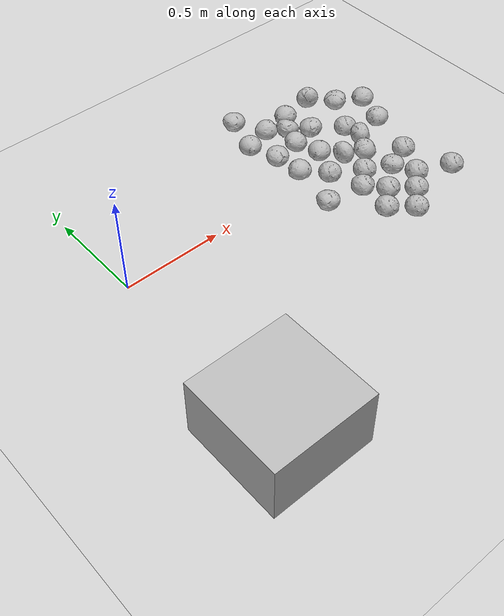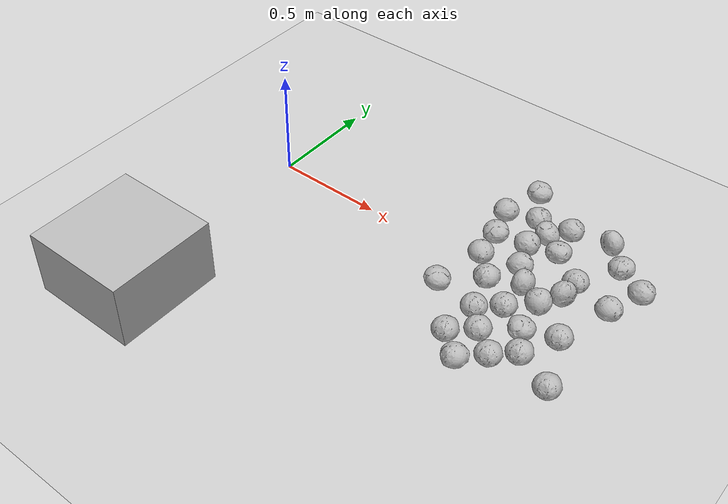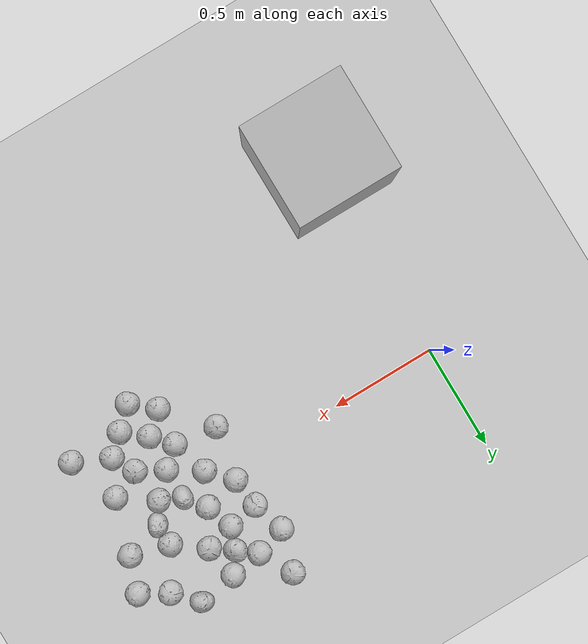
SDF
<sdf version="1.6">
 <world name="default">
  <model name="ground_plane">
   <static>1</static>
   <link name="link">
    <collision name="collision">
     <geometry><plane><normal>0 0 1</normal><size>100 100</size></plane></geometry>
     <surface>
      <contact><collide_bitmask>65535</collide_bitmask></contact>
      <friction><ode><mu>100</mu><mu2>50</mu2></ode></friction>
     </surface>
    </collision>
    <visual name="visual">
     <cast_shadows>0</cast_shadows>
     <geometry><plane><normal>0 0 1</normal><size>100 100</size></plane></geometry>
     <material>
      <script><uri>file://media/materials/scripts/gazebo.material</uri><name>Gazebo/Grey</name></script>
     </material>
    </visual>
   </link>
  </model>
  <light name="sun" type="directional">
   <pose>0 0 10 0 -0 0</pose>
   <diffuse>0.8 0.8 0.8 1</diffuse>
   <specular>0.2 0.2 0.2 1</specular>
   <attenuation>
    <range>1000</range>
    <constant>0.9</constant>
    <linear>0.01</linear>
    <quadratic>0.001</quadratic>
   </attenuation>
   <direction>-0.5 0.1 -0.9</direction>
  </light>
  <model name="mytable">
   <static>1</static>
   <link name="link">
    <inertial>
     <mass>100</mass>
     <inertia><ixx>0.083</ixx><ixy>0</ixy><ixz>0</ixz><iyy>0.083</iyy><iyz>0</iyz><izz>0.083</izz></inertia>
    </inertial>
    <collision name="collision"><geometry><box><size>0.5 0.5 0.4</size></box></geometry></collision>
    <visual name="visual"><geometry><box><size>0.5 0.5 0.4</size></box></geometry></visual>
   </link>
   <pose>0 -1 0.1 0 -0 0</pose>
  </model>
  <gravity>0 0 -9.8</gravity>
  <magnetic_field>6e-06 2.3e-05 -4.2e-05</magnetic_field>
  <atmosphere type="adiabatic"/>
  <physics name="default_physics" default="0" type="ode">
   <max_step_size>0.001</max_step_size>
   <real_time_factor>1</real_time_factor>
   <real_time_update_rate>1000</real_time_update_rate>
  </physics>
  <scene><ambient>0.4 0.4 0.4 1</ambient><background>0.7 0.7 0.7 1</background><shadows>1</shadows></scene>
  <audio><device>default</device></audio>
  <spherical_coordinates>
   <surface_model>EARTH_WGS84</surface_model>
   <latitude_deg>0</latitude_deg>
   <longitude_deg>0</longitude_deg>
   <elevation>0</elevation>
   <heading_deg>0</heading_deg>
  </spherical_coordinates>
  <model name="cabbage_1">
   <link name="link">
    <inertial>
     <mass>1</mass>
     <inertia><ixx>0.001</ixx><ixy>0</ixy><ixz>0</ixz><iyy>0.001</iyy><iyz>0</iyz><izz>0.001</izz></inertia>
    </inertial>
    <collision name="collision">
     <geometry>
      <mesh><scale>0.001 0.001 0.001</scale><uri>model://cabbage/cabbage_single.dae</uri></mesh>
     </geometry>
     <surface>
      <friction><ode><mu>0.8</mu><mu2>0.8</mu2></ode></friction>
      <contact><ode><max_vel>0.05</max_vel><min_depth>0.0001</min_depth></ode></contact>
     </surface>
    </collision>
    <visual name="visual">
     <geometry>
      <mesh><scale>0.001 0.001 0.001</scale><uri>model://cabbage/cabbage_single.dae</uri></mesh>
     </geometry>
     <material><script><uri>model://cabbage/texture.material</uri><name>CabbageTexture</name></script></material>
    </visual>
   </link>
   <pose>1.57456 0.326071 0.048844 -1.61248 -0.168005 0.040837</pose>
  </model>
  <model name="cabbage_2">
   <link name="link">
    <inertial>
     <mass>1</mass>
     <inertia><ixx>0.001</ixx><ixy>0</ixy><ixz>0</ixz><iyy>0.001</iyy><iyz>0</iyz><izz>0.001</izz></inertia>
    </inertial>
    <collision name="collision">
     <geometry>
      <mesh><scale>0.001 0.001 0.001</scale><uri>model://cabbage/cabbage_single.dae</uri></mesh>
     </geometry>
     <surface>
      <friction><ode><mu>0.8</mu><mu2>0.8</mu2></ode></friction>
      <contact><ode><max_vel>0.05</max_vel><min_depth>0.0001</min_depth></ode></contact>
     </surface>
    </collision>
    <visual name="visual">
     <geometry>
      <mesh><scale>0.001 0.001 0.001</scale><uri>model://cabbage/cabbage_single.dae</uri></mesh>
     </geometry>
     <material><script><uri>model://cabbage/texture.material</uri><name>CabbageTexture</name></script></material>
    </visual>
   </link>
   <pose>1.14025 0.381642 0.051425 1.57519 0.009731 -1.18886</pose>
  </model>
  <model name="cabbage_3">
   <link name="link">
    <inertial>
     <mass>1</mass>
     <inertia><ixx>0.001</ixx><ixy>0</ixy><ixz>0</ixz><iyy>0.001</iyy><iyz>0</iyz><izz>0.001</izz></inertia>
    </inertial>
    <collision name="collision">
     <geometry>
      <mesh><scale>0.001 0.001 0.001</scale><uri>model://cabbage/cabbage_single.dae</uri></mesh>
     </geometry>
     <surface>
      <friction><ode><mu>0.8</mu><mu2>0.8</mu2></ode></friction>
      <contact><ode><max_vel>0.05</max_vel><min_depth>0.0001</min_depth></ode></contact>
     </surface>
    </collision>
    <visual name="visual">
     <geometry>
      <mesh><scale>0.001 0.001 0.001</scale><uri>model://cabbage/cabbage_single.dae</uri></mesh>
     </geometry>
     <material><script><uri>model://cabbage/texture.material</uri><name>CabbageTexture</name></script></material>
    </visual>
   </link>
   <pose>1.30641 -0.011556 0.059003 0.12667 0.61895 -1.55094</pose>
  </model>
  <model name="cabbage_4">
   <link name="link">
    <inertial>
     <mass>1</mass>
     <inertia><ixx>0.001</ixx><ixy>0</ixy><ixz>0</ixz><iyy>0.001</iyy><iyz>0</iyz><izz>0.001</izz></inertia>
    </inertial>
    <collision name="collision">
     <geometry>
      <mesh><scale>0.001 0.001 0.001</scale><uri>model://cabbage/cabbage_single.dae</uri></mesh>
     </geometry>
     <surface>
      <friction><ode><mu>0.8</mu><mu2>0.8</mu2></ode></friction>
      <contact><ode><max_vel>0.05</max_vel><min_depth>0.0001</min_depth></ode></contact>
     </surface>
    </collision>
    <visual name="visual">
     <geometry>
      <mesh><scale>0.001 0.001 0.001</scale><uri>model://cabbage/cabbage_single.dae</uri></mesh>
     </geometry>
     <material><script><uri>model://cabbage/texture.material</uri><name>CabbageTexture</name></script></material>
    </visual>
   </link>
   <pose>1.16035 -0.065335 0.051506 1.5765 0.009258 -3.08324</pose>
  </model>
  <model name="cabbage_5">
   <link name="link">
    <inertial>
     <mass>1</mass>
     <inertia><ixx>0.001</ixx><ixy>0</ixy><ixz>0</ixz><iyy>0.001</iyy><iyz>0</iyz><izz>0.001</izz></inertia>
    </inertial>
    <collision name="collision">
     <geometry>
      <mesh><scale>0.001 0.001 0.001</scale><uri>model://cabbage/cabbage_single.dae</uri></mesh>
     </geometry>
     <surface>
      <friction><ode><mu>0.8</mu><mu2>0.8</mu2></ode></friction>
      <contact><ode><max_vel>0.05</max_vel><min_depth>0.0001</min_depth></ode></contact>
     </surface>
    </collision>
    <visual name="visual">
     <geometry>
      <mesh><scale>0.001 0.001 0.001</scale><uri>model://cabbage/cabbage_single.dae</uri></mesh>
     </geometry>
     <material><script><uri>model://cabbage/texture.material</uri><name>CabbageTexture</name></script></material>
    </visual>
   </link>
   <pose>1.70587 0.255784 0.051507 1.57631 0.009067 -0.719772</pose>
  </model>
  <model name="cabbage_6">
   <link name="link">
    <inertial>
     <mass>1</mass>
     <inertia><ixx>0.001</ixx><ixy>0</ixy><ixz>0</ixz><iyy>0.001</iyy><iyz>0</iyz><izz>0.001</izz></inertia>
    </inertial>
    <collision name="collision">
     <geometry>
      <mesh><scale>0.001 0.001 0.001</scale><uri>model://cabbage/cabbage_single.dae</uri></mesh>
     </geometry>
     <surface>
      <friction><ode><mu>0.8</mu><mu2>0.8</mu2></ode></friction>
      <contact><ode><max_vel>0.05</max_vel><min_depth>0.0001</min_depth></ode></contact>
     </surface>
    </collision>
    <visual name="visual">
     <geometry>
      <mesh><scale>0.001 0.001 0.001</scale><uri>model://cabbage/cabbage_single.dae</uri></mesh>
     </geometry>
     <material><script><uri>model://cabbage/texture.material</uri><name>CabbageTexture</name></script></material>
    </visual>
   </link>
   <pose>1.40607 -0.06014 0.056394 1.96578 -0.366572 1.27755</pose>
  </model>
  <model name="cabbage_7">
   <link name="link">
    <inertial>
     <mass>1</mass>
     <inertia><ixx>0.001</ixx><ixy>0</ixy><ixz>0</ixz><iyy>0.001</iyy><iyz>0</iyz><izz>0.001</izz></inertia>
    </inertial>
    <collision name="collision">
     <geometry>
      <mesh><scale>0.001 0.001 0.001</scale><uri>model://cabbage/cabbage_single.dae</uri></mesh>
     </geometry>
     <surface>
      <friction><ode><mu>0.8</mu><mu2>0.8</mu2></ode></friction>
      <contact><ode><max_vel>0.05</max_vel><min_depth>0.0001</min_depth></ode></contact>
     </surface>
    </collision>
    <visual name="visual">
     <geometry>
      <mesh><scale>0.001 0.001 0.001</scale><uri>model://cabbage/cabbage_single.dae</uri></mesh>
     </geometry>
     <material><script><uri>model://cabbage/texture.material</uri><name>CabbageTexture</name></script></material>
    </visual>
   </link>
   <pose>1.05927 0.04365 0.051505 1.57638 0.009409 1.37287</pose>
  </model>
  <model name="cabbage_8">
   <link name="link">
    <inertial>
     <mass>1</mass>
     <inertia><ixx>0.001</ixx><ixy>0</ixy><ixz>0</ixz><iyy>0.001</iyy><iyz>0</iyz><izz>0.001</izz></inertia>
    </inertial>
    <collision name="collision">
     <geometry>
      <mesh><scale>0.001 0.001 0.001</scale><uri>model://cabbage/cabbage_single.dae</uri></mesh>
     </geometry>
     <surface>
      <friction><ode><mu>0.8</mu><mu2>0.8</mu2></ode></friction>
      <contact><ode><max_vel>0.05</max_vel><min_depth>0.0001</min_depth></ode></contact>
     </surface>
    </collision>
    <visual name="visual">
     <geometry>
      <mesh><scale>0.001 0.001 0.001</scale><uri>model://cabbage/cabbage_single.dae</uri></mesh>
     </geometry>
     <material><script><uri>model://cabbage/texture.material</uri><name>CabbageTexture</name></script></material>
    </visual>
   </link>
   <pose>1.23107 0.085201 0.051506 1.57639 0.009341 -0.17715</pose>
  </model>
  <model name="cabbage_9">
   <link name="link">
    <inertial>
     <mass>1</mass>
     <inertia><ixx>0.001</ixx><ixy>0</ixy><ixz>0</ixz><iyy>0.001</iyy><iyz>0</iyz><izz>0.001</izz></inertia>
    </inertial>
    <collision name="collision">
     <geometry>
      <mesh><scale>0.001 0.001 0.001</scale><uri>model://cabbage/cabbage_single.dae</uri></mesh>
     </geometry>
     <surface>
      <friction><ode><mu>0.8</mu><mu2>0.8</mu2></ode></friction>
      <contact><ode><max_vel>0.05</max_vel><min_depth>0.0001</min_depth></ode></contact>
     </surface>
    </collision>
    <visual name="visual">
     <geometry>
      <mesh><scale>0.001 0.001 0.001</scale><uri>model://cabbage/cabbage_single.dae</uri></mesh>
     </geometry>
     <material><script><uri>model://cabbage/texture.material</uri><name>CabbageTexture</name></script></material>
    </visual>
   </link>
   <pose>1.29253 0.406218 0.051507 1.57639 0.00912 -0.69345</pose>
  </model>
  <model name="cabbage_10">
   <link name="link">
    <inertial>
     <mass>1</mass>
     <inertia><ixx>0.001</ixx><ixy>0</ixy><ixz>0</ixz><iyy>0.001</iyy><iyz>0</iyz><izz>0.001</izz></inertia>
    </inertial>
    <collision name="collision">
     <geometry>
      <mesh><scale>0.001 0.001 0.001</scale><uri>model://cabbage/cabbage_single.dae</uri></mesh>
     </geometry>
     <surface>
      <friction><ode><mu>0.8</mu><mu2>0.8</mu2></ode></friction>
      <contact><ode><max_vel>0.05</max_vel><min_depth>0.0001</min_depth></ode></contact>
     </surface>
    </collision>
    <visual name="visual">
     <geometry>
      <mesh><scale>0.001 0.001 0.001</scale><uri>model://cabbage/cabbage_single.dae</uri></mesh>
     </geometry>
     <material><script><uri>model://cabbage/texture.material</uri><name>CabbageTexture</name></script></material>
    </visual>
   </link>
   <pose>1.22203 0.313648 0.051116 -1.6542 -0.577219 -2.54183</pose>
  </model>
  <model name="cabbage_11">
   <link name="link">
    <inertial>
     <mass>1</mass>
     <inertia><ixx>0.001</ixx><ixy>0</ixy><ixz>0</ixz><iyy>0.001</iyy><iyz>0</iyz><izz>0.001</izz></inertia>
    </inertial>
    <collision name="collision">
     <geometry>
      <mesh><scale>0.001 0.001 0.001</scale><uri>model://cabbage/cabbage_single.dae</uri></mesh>
     </geometry>
     <surface>
      <friction><ode><mu>0.8</mu><mu2>0.8</mu2></ode></friction>
      <contact><ode><max_vel>0.05</max_vel><min_depth>0.0001</min_depth></ode></contact>
     </surface>
    </collision>
    <visual name="visual">
     <geometry>
      <mesh><scale>0.001 0.001 0.001</scale><uri>model://cabbage/cabbage_single.dae</uri></mesh>
     </geometry>
     <material><script><uri>model://cabbage/texture.material</uri><name>CabbageTexture</name></script></material>
    </visual>
   </link>
   <pose>1.46461 0.140466 0.052233 1.66635 -0.021573 -2.61976</pose>
  </model>
  <model name="cabbage_12">
   <link name="link">
    <inertial>
     <mass>1</mass>
     <inertia><ixx>0.001</ixx><ixy>0</ixy><ixz>0</ixz><iyy>0.001</iyy><iyz>0</iyz><izz>0.001</izz></inertia>
    </inertial>
    <collision name="collision">
     <geometry>
      <mesh><scale>0.001 0.001 0.001</scale><uri>model://cabbage/cabbage_single.dae</uri></mesh>
     </geometry>
     <surface>
      <friction><ode><mu>0.8</mu><mu2>0.8</mu2></ode></friction>
      <contact><ode><max_vel>0.05</max_vel><min_depth>0.0001</min_depth></ode></contact>
     </surface>
    </collision>
    <visual name="visual">
     <geometry>
      <mesh><scale>0.001 0.001 0.001</scale><uri>model://cabbage/cabbage_single.dae</uri></mesh>
     </geometry>
     <material><script><uri>model://cabbage/texture.material</uri><name>CabbageTexture</name></script></material>
    </visual>
   </link>
   <pose>1.4279 -0.226624 0.048853 -1.66267 -0.171126 -1.74205</pose>
  </model>
  <model name="cabbage_13">
   <link name="link">
    <inertial>
     <mass>1</mass>
     <inertia><ixx>0.001</ixx><ixy>0</ixy><ixz>0</ixz><iyy>0.001</iyy><iyz>0</iyz><izz>0.001</izz></inertia>
    </inertial>
    <collision name="collision">
     <geometry>
      <mesh><scale>0.001 0.001 0.001</scale><uri>model://cabbage/cabbage_single.dae</uri></mesh>
     </geometry>
     <surface>
      <friction><ode><mu>0.8</mu><mu2>0.8</mu2></ode></friction>
      <contact><ode><max_vel>0.05</max_vel><min_depth>0.0001</min_depth></ode></contact>
     </surface>
    </collision>
    <visual name="visual">
     <geometry>
      <mesh><scale>0.001 0.001 0.001</scale><uri>model://cabbage/cabbage_single.dae</uri></mesh>
     </geometry>
     <material><script><uri>model://cabbage/texture.material</uri><name>CabbageTexture</name></script></material>
    </visual>
   </link>
   <pose>1.05228 0.534414 0.048854 -1.66158 -0.104835 -2.29005</pose>
  </model>
  <model name="cabbage_14">
   <link name="link">
    <inertial>
     <mass>1</mass>
     <inertia><ixx>0.001</ixx><ixy>0</ixy><ixz>0</ixz><iyy>0.001</iyy><iyz>0</iyz><izz>0.001</izz></inertia>
    </inertial>
    <collision name="collision">
     <geometry>
      <mesh><scale>0.001 0.001 0.001</scale><uri>model://cabbage/cabbage_single.dae</uri></mesh>
     </geometry>
     <surface>
      <friction><ode><mu>0.8</mu><mu2>0.8</mu2></ode></friction>
      <contact><ode><max_vel>0.05</max_vel><min_depth>0.0001</min_depth></ode></contact>
     </surface>
    </collision>
    <visual name="visual">
     <geometry>
      <mesh><scale>0.001 0.001 0.001</scale><uri>model://cabbage/cabbage_single.dae</uri></mesh>
     </geometry>
     <material><script><uri>model://cabbage/texture.material</uri><name>CabbageTexture</name></script></material>
    </visual>
   </link>
   <pose>1.64453 0.089011 0.051507 1.57648 0.009044 1.93802</pose>
  </model>
  <model name="cabbage_15">
   <link name="link">
    <inertial>
     <mass>1</mass>
     <inertia><ixx>0.001</ixx><ixy>0</ixy><ixz>0</ixz><iyy>0.001</iyy><iyz>0</iyz><izz>0.001</izz></inertia>
    </inertial>
    <collision name="collision">
     <geometry>
      <mesh><scale>0.001 0.001 0.001</scale><uri>model://cabbage/cabbage_single.dae</uri></mesh>
     </geometry>
     <surface>
      <friction><ode><mu>0.8</mu><mu2>0.8</mu2></ode></friction>
      <contact><ode><max_vel>0.05</max_vel><min_depth>0.0001</min_depth></ode></contact>
     </surface>
    </collision>
    <visual name="visual">
     <geometry>
      <mesh><scale>0.001 0.001 0.001</scale><uri>model://cabbage/cabbage_single.dae</uri></mesh>
     </geometry>
     <material><script><uri>model://cabbage/texture.material</uri><name>CabbageTexture</name></script></material>
    </visual>
   </link>
   <pose>0.997145 0.340501 0.051507 1.57634 0.00908 0.291486</pose>
  </model>
  <model name="cabbage_16">
   <link name="link">
    <inertial>
     <mass>1</mass>
     <inertia><ixx>0.001</ixx><ixy>0</ixy><ixz>0</ixz><iyy>0.001</iyy><iyz>0</iyz><izz>0.001</izz></inertia>
    </inertial>
    <collision name="collision">
     <geometry>
      <mesh><scale>0.001 0.001 0.001</scale><uri>model://cabbage/cabbage_single.dae</uri></mesh>
     </geometry>
     <surface>
      <friction><ode><mu>0.8</mu><mu2>0.8</mu2></ode></friction>
      <contact><ode><max_vel>0.05</max_vel><min_depth>0.0001</min_depth></ode></contact>
     </surface>
    </collision>
    <visual name="visual">
     <geometry>
      <mesh><scale>0.001 0.001 0.001</scale><uri>model://cabbage/cabbage_single.dae</uri></mesh>
     </geometry>
     <material><script><uri>model://cabbage/texture.material</uri><name>CabbageTexture</name></script></material>
    </visual>
   </link>
   <pose>1.46241 0.035697 0.061396 -2.99728 -0.320412 -2.07833</pose>
  </model>
  <model name="cabbage_17">
   <link name="link">
    <inertial>
     <mass>1</mass>
     <inertia><ixx>0.001</ixx><ixy>0</ixy><ixz>0</ixz><iyy>0.001</iyy><iyz>0</iyz><izz>0.001</izz></inertia>
    </inertial>
    <collision name="collision">
     <geometry>
      <mesh><scale>0.001 0.001 0.001</scale><uri>model://cabbage/cabbage_single.dae</uri></mesh>
     </geometry>
     <surface>
      <friction><ode><mu>0.8</mu><mu2>0.8</mu2></ode></friction>
      <contact><ode><max_vel>0.05</max_vel><min_depth>0.0001</min_depth></ode></contact>
     </surface>
    </collision>
    <visual name="visual">
     <geometry>
      <mesh><scale>0.001 0.001 0.001</scale><uri>model://cabbage/cabbage_single.dae</uri></mesh>
     </geometry>
     <material><script><uri>model://cabbage/texture.material</uri><name>CabbageTexture</name></script></material>
    </visual>
   </link>
   <pose>1.32059 0.243847 0.04885 -1.66244 -0.171643 -0.721896</pose>
  </model>
  <model name="cabbage_18">
   <link name="link">
    <inertial>
     <mass>1</mass>
     <inertia><ixx>0.001</ixx><ixy>0</ixy><ixz>0</ixz><iyy>0.001</iyy><iyz>0</iyz><izz>0.001</izz></inertia>
    </inertial>
    <collision name="collision">
     <geometry>
      <mesh><scale>0.001 0.001 0.001</scale><uri>model://cabbage/cabbage_single.dae</uri></mesh>
     </geometry>
     <surface>
      <friction><ode><mu>0.8</mu><mu2>0.8</mu2></ode></friction>
      <contact><ode><max_vel>0.05</max_vel><min_depth>0.0001</min_depth></ode></contact>
     </surface>
    </collision>
    <visual name="visual">
     <geometry>
      <mesh><scale>0.001 0.001 0.001</scale><uri>model://cabbage/cabbage_single.dae</uri></mesh>
     </geometry>
     <material><script><uri>model://cabbage/texture.material</uri><name>CabbageTexture</name></script></material>
    </visual>
   </link>
   <pose>1.04361 0.186456 0.04884 -1.61246 -0.167755 1.83566</pose>
  </model>
  <model name="cabbage_19">
   <link name="link">
    <inertial>
     <mass>1</mass>
     <inertia><ixx>0.001</ixx><ixy>0</ixy><ixz>0</ixz><iyy>0.001</iyy><iyz>0</iyz><izz>0.001</izz></inertia>
    </inertial>
    <collision name="collision">
     <geometry>
      <mesh><scale>0.001 0.001 0.001</scale><uri>model://cabbage/cabbage_single.dae</uri></mesh>
     </geometry>
     <surface>
      <friction><ode><mu>0.8</mu><mu2>0.8</mu2></ode></friction>
      <contact><ode><max_vel>0.05</max_vel><min_depth>0.0001</min_depth></ode></contact>
     </surface>
    </collision>
    <visual name="visual">
     <geometry>
      <mesh><scale>0.001 0.001 0.001</scale><uri>model://cabbage/cabbage_single.dae</uri></mesh>
     </geometry>
     <material><script><uri>model://cabbage/texture.material</uri><name>CabbageTexture</name></script></material>
    </visual>
   </link>
   <pose>1.47272 0.43561 0.059003 0.126666 0.618869 -0.495004</pose>
  </model>
  <model name="cabbage_20">
   <link name="link">
    <inertial>
     <mass>1</mass>
     <inertia><ixx>0.001</ixx><ixy>0</ixy><ixz>0</ixz><iyy>0.001</iyy><iyz>0</iyz><izz>0.001</izz></inertia>
    </inertial>
    <collision name="collision">
     <geometry>
      <mesh><scale>0.001 0.001 0.001</scale><uri>model://cabbage/cabbage_single.dae</uri></mesh>
     </geometry>
     <surface>
      <friction><ode><mu>0.8</mu><mu2>0.8</mu2></ode></friction>
      <contact><ode><max_vel>0.05</max_vel><min_depth>0.0001</min_depth></ode></contact>
     </surface>
    </collision>
    <visual name="visual">
     <geometry>
      <mesh><scale>0.001 0.001 0.001</scale><uri>model://cabbage/cabbage_single.dae</uri></mesh>
     </geometry>
     <material><script><uri>model://cabbage/texture.material</uri><name>CabbageTexture</name></script></material>
    </visual>
   </link>
   <pose>1.18852 0.210481 0.054291 1.55406 0.320519 -0.712201</pose>
  </model>
  <model name="cabbage_11_clone">
   <link name="link">
    <inertial>
     <mass>1</mass>
     <inertia><ixx>0.001</ixx><ixy>0</ixy><ixz>0</ixz><iyy>0.001</iyy><iyz>0</iyz><izz>0.001</izz></inertia>
    </inertial>
    <collision name="collision">
     <geometry>
      <mesh><scale>0.001 0.001 0.001</scale><uri>model://cabbage/cabbage_single.dae</uri></mesh>
     </geometry>
     <surface>
      <friction><ode><mu>0.8</mu><mu2>0.8</mu2></ode></friction>
      <contact><ode><max_vel>0.05</max_vel><min_depth>0.0001</min_depth></ode></contact>
     </surface>
    </collision>
    <visual name="visual">
     <geometry>
      <mesh><scale>0.001 0.001 0.001</scale><uri>model://cabbage/cabbage_single.dae</uri></mesh>
     </geometry>
     <material><script><uri>model://cabbage/texture.material</uri><name>CabbageTexture</name></script></material>
    </visual>
   </link>
   <pose>1.56824 -0.16939 0.051511 1.57618 0.00873 -2.5711</pose>
  </model>
  <model name="cabbage_11_clone_0">
   <link name="link">
    <inertial>
     <mass>1</mass>
     <inertia><ixx>0.001</ixx><ixy>0</ixy><ixz>0</ixz><iyy>0.001</iyy><iyz>0</iyz><izz>0.001</izz></inertia>
    </inertial>
    <collision name="collision">
     <geometry>
      <mesh><scale>0.001 0.001 0.001</scale><uri>model://cabbage/cabbage_single.dae</uri></mesh>
     </geometry>
     <surface>
      <friction><ode><mu>0.8</mu><mu2>0.8</mu2></ode></friction>
      <contact><ode><max_vel>0.05</max_vel><min_depth>0.0001</min_depth></ode></contact>
     </surface>
    </collision>
    <visual name="visual">
     <geometry>
      <mesh><scale>0.001 0.001 0.001</scale><uri>model://cabbage/cabbage_single.dae</uri></mesh>
     </geometry>
     <material><script><uri>model://cabbage/texture.material</uri><name>CabbageTexture</name></script></material>
    </visual>
   </link>
   <pose>1.65816 -0.409684 0.051509 1.57621 0.008908 -2.6025</pose>
  </model>
  <model name="cabbage_11_clone_1">
   <link name="link">
    <inertial>
     <mass>1</mass>
     <inertia><ixx>0.001</ixx><ixy>0</ixy><ixz>0</ixz><iyy>0.001</iyy><iyz>0</iyz><izz>0.001</izz></inertia>
    </inertial>
    <collision name="collision">
     <geometry>
      <mesh><scale>0.001 0.001 0.001</scale><uri>model://cabbage/cabbage_single.dae</uri></mesh>
     </geometry>
     <surface>
      <friction><ode><mu>0.8</mu><mu2>0.8</mu2></ode></friction>
      <contact><ode><max_vel>0.05</max_vel><min_depth>0.0001</min_depth></ode></contact>
     </surface>
    </collision>
    <visual name="visual">
     <geometry>
      <mesh><scale>0.001 0.001 0.001</scale><uri>model://cabbage/cabbage_single.dae</uri></mesh>
     </geometry>
     <material><script><uri>model://cabbage/texture.material</uri><name>CabbageTexture</name></script></material>
    </visual>
   </link>
   <pose>1.48825 -0.331901 0.051511 1.57614 0.008818 -2.75238</pose>
  </model>
  <model name="cabbage_11_clone_2">
   <link name="link">
    <inertial>
     <mass>1</mass>
     <inertia><ixx>0.001</ixx><ixy>0</ixy><ixz>0</ixz><iyy>0.001</iyy><iyz>0</iyz><izz>0.001</izz></inertia>
    </inertial>
    <collision name="collision">
     <geometry>
      <mesh><scale>0.001 0.001 0.001</scale><uri>model://cabbage/cabbage_single.dae</uri></mesh>
     </geometry>
     <surface>
      <friction><ode><mu>0.8</mu><mu2>0.8</mu2></ode></friction>
      <contact><ode><max_vel>0.05</max_vel><min_depth>0.0001</min_depth></ode></contact>
     </surface>
    </collision>
    <visual name="visual">
     <geometry>
      <mesh><scale>0.001 0.001 0.001</scale><uri>model://cabbage/cabbage_single.dae</uri></mesh>
     </geometry>
     <material><script><uri>model://cabbage/texture.material</uri><name>CabbageTexture</name></script></material>
    </visual>
   </link>
   <pose>1.29432 -0.328083 0.051511 1.57614 0.008845 -2.3996</pose>
  </model>
  <model name="cabbage_11_clone_3">
   <link name="link">
    <inertial>
     <mass>1</mass>
     <inertia><ixx>0.001</ixx><ixy>0</ixy><ixz>0</ixz><iyy>0.001</iyy><iyz>0</iyz><izz>0.001</izz></inertia>
    </inertial>
    <collision name="collision">
     <geometry>
      <mesh><scale>0.001 0.001 0.001</scale><uri>model://cabbage/cabbage_single.dae</uri></mesh>
     </geometry>
     <surface>
      <friction><ode><mu>0.8</mu><mu2>0.8</mu2></ode></friction>
      <contact><ode><max_vel>0.05</max_vel><min_depth>0.0001</min_depth></ode></contact>
     </surface>
    </collision>
    <visual name="visual">
     <geometry>
      <mesh><scale>0.001 0.001 0.001</scale><uri>model://cabbage/cabbage_single.dae</uri></mesh>
     </geometry>
     <material><script><uri>model://cabbage/texture.material</uri><name>CabbageTexture</name></script></material>
    </visual>
   </link>
   <pose>1.30527 -0.158603 0.05151 1.57625 0.008847 -2.60555</pose>
  </model>
  <model name="cabbage_11_clone_4">
   <link name="link">
    <inertial>
     <mass>1</mass>
     <inertia><ixx>0.001</ixx><ixy>0</ixy><ixz>0</ixz><iyy>0.001</iyy><iyz>0</iyz><izz>0.001</izz></inertia>
    </inertial>
    <collision name="collision">
     <geometry>
      <mesh><scale>0.001 0.001 0.001</scale><uri>model://cabbage/cabbage_single.dae</uri></mesh>
     </geometry>
     <surface>
      <friction><ode><mu>0.8</mu><mu2>0.8</mu2></ode></friction>
      <contact><ode><max_vel>0.05</max_vel><min_depth>0.0001</min_depth></ode></contact>
     </surface>
    </collision>
    <visual name="visual">
     <geometry>
      <mesh><scale>0.001 0.001 0.001</scale><uri>model://cabbage/cabbage_single.dae</uri></mesh>
     </geometry>
     <material><script><uri>model://cabbage/texture.material</uri><name>CabbageTexture</name></script></material>
    </visual>
   </link>
   <pose>1.30266 -0.505386 0.051496 1.57429 0.009003 2.97629</pose>
  </model>
  <model name="cabbage_11_clone_5">
   <link name="link">
    <inertial>
     <mass>1</mass>
     <inertia><ixx>0.001</ixx><ixy>0</ixy><ixz>0</ixz><iyy>0.001</iyy><iyz>0</iyz><izz>0.001</izz></inertia>
    </inertial>
    <collision name="collision">
     <geometry>
      <mesh><scale>0.001 0.001 0.001</scale><uri>model://cabbage/cabbage_single.dae</uri></mesh>
     </geometry>
     <surface>
      <friction><ode><mu>0.8</mu><mu2>0.8</mu2></ode></friction>
      <contact><ode><max_vel>0.05</max_vel><min_depth>0.0001</min_depth></ode></contact>
     </surface>
    </collision>
    <visual name="visual">
     <geometry>
      <mesh><scale>0.001 0.001 0.001</scale><uri>model://cabbage/cabbage_single.dae</uri></mesh>
     </geometry>
     <material><script><uri>model://cabbage/texture.material</uri><name>CabbageTexture</name></script></material>
    </visual>
   </link>
   <pose>1.19609 -0.413969 0.051447 1.56763 0.00925 -2.63237</pose>
  </model>
  <model name="cabbage_11_clone_6">
   <link name="link">
    <inertial>
     <mass>1</mass>
     <inertia><ixx>0.001</ixx><ixy>0</ixy><ixz>0</ixz><iyy>0.001</iyy><iyz>0</iyz><izz>0.001</izz></inertia>
    </inertial>
    <collision name="collision">
     <geometry>
      <mesh><scale>0.001 0.001 0.001</scale><uri>model://cabbage/cabbage_single.dae</uri></mesh>
     </geometry>
     <surface>
      <friction><ode><mu>0.8</mu><mu2>0.8</mu2></ode></friction>
      <contact><ode><max_vel>0.05</max_vel><min_depth>0.0001</min_depth></ode></contact>
     </surface>
    </collision>
    <visual name="visual">
     <geometry>
      <mesh><scale>0.001 0.001 0.001</scale><uri>model://cabbage/cabbage_single.dae</uri></mesh>
     </geometry>
     <material><script><uri>model://cabbage/texture.material</uri><name>CabbageTexture</name></script></material>
    </visual>
   </link>
   <pose>1.39952 -0.414486 0.05151 1.5762 0.008865 -2.60944</pose>
  </model>
  <model name="cabbage_11_clone_7">
   <link name="link">
    <inertial>
     <mass>1</mass>
     <inertia><ixx>0.001</ixx><ixy>0</ixy><ixz>0</ixz><iyy>0.001</iyy><iyz>0</iyz><izz>0.001</izz></inertia>
    </inertial>
    <collision name="collision">
     <geometry>
      <mesh><scale>0.001 0.001 0.001</scale><uri>model://cabbage/cabbage_single.dae</uri></mesh>
     </geometry>
     <surface>
      <friction><ode><mu>0.8</mu><mu2>0.8</mu2></ode></friction>
      <contact><ode><max_vel>0.05</max_vel><min_depth>0.0001</min_depth></ode></contact>
     </surface>
    </collision>
    <visual name="visual">
     <geometry>
      <mesh><scale>0.001 0.001 0.001</scale><uri>model://cabbage/cabbage_single.dae</uri></mesh>
     </geometry>
     <material><script><uri>model://cabbage/texture.material</uri><name>CabbageTexture</name></script></material>
    </visual>
   </link>
   <pose>1.21369 -0.237468 0.051511 1.57596 0.008791 -2.12555</pose>
  </model>
  <model name="cabbage_11_clone_8">
   <link name="link">
    <inertial>
     <mass>1</mass>
     <inertia><ixx>0.001</ixx><ixy>0</ixy><ixz>0</ixz><iyy>0.001</iyy><iyz>0</iyz><izz>0.001</izz></inertia>
    </inertial>
    <collision name="collision">
     <geometry>
      <mesh><scale>0.001 0.001 0.001</scale><uri>model://cabbage/cabbage_single.dae</uri></mesh>
     </geometry>
     <surface>
      <friction><ode><mu>0.8</mu><mu2>0.8</mu2></ode></friction>
      <contact><ode><max_vel>0.05</max_vel><min_depth>0.0001</min_depth></ode></contact>
     </surface>
    </collision>
    <visual name="visual">
     <geometry>
      <mesh><scale>0.001 0.001 0.001</scale><uri>model://cabbage/cabbage_single.dae</uri></mesh>
     </geometry>
     <material><script><uri>model://cabbage/texture.material</uri><name>CabbageTexture</name></script></material>
    </visual>
   </link>
   <pose>1.01019 -0.208659 0.048846 -1.61259 -0.168172 -2.53285</pose>
  </model>
 </world>
</sdf>
